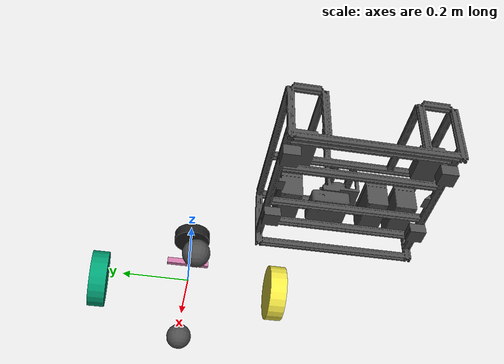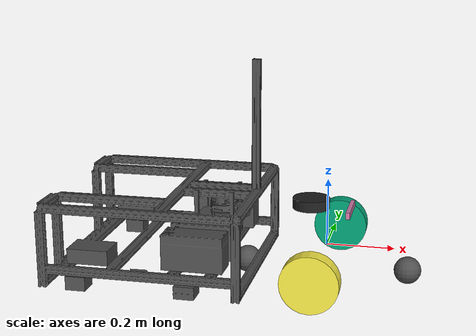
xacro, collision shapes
<?xml version="1.0" ?>
<robot name="warebot" xmlns:xacro="http://ros.org/wiki/xacro">
  <xacro:include filename="$(find warebot_2020_description)/urdf/material.xacro"/>
  <xacro:include filename="$(find warebot_2020_description)/urdf/warebot.gazebo.xacro"/>

  <xacro:property name="asus_cam_rgb_px" value="0.005"/>
  <xacro:property name="asus_cam_rgb_py" value="0.018"/>
  <xacro:property name="asus_cam_rgb_pz" value="0.013"/>
  <xacro:property name="asus_cam_depth_offset" value="0.01"/>

  <!--World link as base foot used for fixing robot to Gazebo-->
  <link name="base_footprint"/>

  <joint name="base_joint" type="fixed">
    <parent link="base_footprint"/>
    <child link="base_link" />
    <origin xyz="0 0 0.010" rpy="0 0 0"/>
  </joint>

  <!--4 wheel robot-->

  <!--2 wheel robot with castor wheels-->
  <link name="base_link">
    <inertial>
      <mass value="60"/>
        <origin rpy="0 0 0" xyz="0 0 0.1"/>
        <inertia ixx="1.215" ixy="0.0" ixz="0.0" iyy="1.215" iyz="0.0" izz="2.075"/>
    </inertial>

    <collision name="chassis_collision">
      <origin rpy="0 0 0" xyz="0 0 0"/>
      <geometry>
        <mesh filename="package://warebot_2020_description/meshes/Chassis.stl" scale="0.01 0.01 0.01"/>
      </geometry>
    </collision>

    <collision name="caster_collision_back">
      <origin rpy="0 0 0" xyz="-0.24 0 -0.074"/>
      <geometry>
        <sphere radius="0.04"/>
      </geometry>
      <surface>
        <friction>
          <ode>
            <mu>0</mu>
            <mu2>0</mu2>
            <slip1>1.0</slip1>
            <slip2>1.0</slip2>
          </ode>
        </friction>
      </surface>
    </collision>

    <collision name="caster_collision_front">
      <origin rpy="0 0 0" xyz="0.24 0 -0.074"/>
      <geometry>
        <sphere radius="0.04"/>
      </geometry>
      <surface>
        <friction>
          <ode>
            <mu>0</mu>
            <mu2>0</mu2>
            <slip1>1.0</slip1>
            <slip2>1.0</slip2>
          </ode>
        </friction>
      </surface>
    </collision>

    <visual name="chassis_visual">
      <origin rpy="0 0 0" xyz="0 0 0"/>
      <geometry>
        <mesh filename="package://warebot_2020_description/meshes/Chassis.stl" scale="0.01 0.01 0.01"/>
      </geometry>
    </visual>

    <visual name="caster_visual_back">
      <origin rpy="0 0 0" xyz="-0.24 0 -0.06"/>
      <geometry>
        <mesh filename="package://warebot_2020_description/meshes/WareBot_Caster.dae" scale="1.0 1.0 1.0"/>
      </geometry>
    </visual>

    <visual name="caster_visual_front">
      <origin rpy="0 0 -3.14158" xyz="0.24 0 -0.04"/>
      <geometry>
        <mesh filename="package://warebot_2020_description/meshes/WareBot_Caster.dae" scale="1.0 1.0 1.0"/>
      </geometry>
    </visual>
  </link>

  <joint name="wheel_left_joint" type="continuous">
    <parent link="base_link"/>
    <child link="wheel_left_link"/>
    <origin rpy="0 0 0" xyz="0.009 0.27 -0.0308"/>
    <axis xyz="0 1 0"/>
    <limit effort="90" velocity="20"/>
  </joint>

  <link name="wheel_left_link">
    <inertial>
      <mass value="5"/>
      <origin rpy="0 0 0" xyz="0 0 0"/>
      <inertia ixx="0.0123" ixy="0" ixz="0" iyy="0.0226" iyz="0" izz="0.0123"/>
    </inertial>

    <collision name="wheel_left_collision">
      <origin rpy="1.5707 0 0" xyz="0 0 0"/>
        <geometry>
          <cylinder length="0.05" radius="0.0835"/>
        </geometry>
    </collision>

    <visual name="wheel_left_visual">
      <origin rpy="0 0 0" xyz="0 0 0"/>
      <geometry>
          <mesh filename="package://warebot_2020_description/meshes/WareBot_Wheel.dae" scale="1.0 1.0 1.0"/>
      </geometry>
    </visual>
  </link>

  <joint name="wheel_right_joint" type="continuous">
    <parent link="base_link"/>
    <child link="wheel_right_link"/>
    <origin rpy="0 0 0" xyz="-0.009 -0.27 -0.0308"/>
    <axis xyz="0 1 0"/>
    <limit effort="90" velocity="20"/>
  </joint>

  <link name="wheel_right_link">
    <inertial>
      <mass value="5"/>
      <origin rpy="0 0 0" xyz="0 0 0"/>
      <inertia ixx="0.0123" ixy="0" ixz="0" iyy="0.0226" iyz="0" izz="0.0123"/>
    </inertial>

    <collision name="warebot_wheel_right_collision">
      <origin rpy="1.5707 0 0" xyz="0 0 0"/>
      <geometry>
        <cylinder length="0.05" radius="0.0835"/>
      </geometry>
    </collision>

    <visual name="warebot_wheel_right_visual">
      <origin rpy="0 0 3.14" xyz="0 0 0"/>
      <geometry>
        <mesh filename="package://warebot_2020_description/meshes/WareBot_Wheel.dae" scale="1.0 1.0 1.0"/>
      </geometry>
    </visual>
  </link>

  <joint name="imu_joint" type="fixed">
    <parent link="base_link"/>
    <child link="imu_link"/>
    <origin xyz="0.0 0 0.068" rpy="0 0 0"/>
  </joint>
  <link name="imu_link"/>

  <joint name="scan_joint" type="fixed">
    <parent link="base_link"/>
    <child link="base_scan"/>
    <origin xyz="-0.064 0 0.122" rpy="0 0 0"/>
  </joint>

  <link name="base_scan">
    <visual>
      <origin xyz="0 0 0" rpy="0 0 0"/>
      <geometry>
        <mesh filename="package://warebot_2020_description/meshes/lds.stl" scale="0.001 0.001 0.001"/>
      </geometry>
      <material name="dark"/>
    </visual>

    <collision>
      <origin xyz="0.015 0 -0.0065" rpy="0 0 0"/>
      <geometry>
        <cylinder length="0.0315" radius="0.055"/>
      </geometry>
    </collision>

    <inertial>
      <mass value="0.114" />
      <origin xyz="0 0 0" />
      <inertia ixx="0.001" ixy="0.0" ixz="0.0"
               iyy="0.001" iyz="0.0"
               izz="0.001" />
    </inertial>
  </link>

  <joint name="camera_joint" type="fixed">
    <origin xyz="0.064 -0.065 0.094" rpy="0 0 0"/>
    <parent link="base_link"/>
    <child link="camera_link"/>
  </joint>

  <link name="camera_link">
    <visual>
     <origin xyz="0 0 0" rpy="1.57 0 1.57"/>
      <geometry>
       <mesh filename="package://turtlebot3_description/meshes/sensors/r200.dae" />
      </geometry>
    </visual>
    <collision>
      <origin xyz="0.003 0.065 0.007" rpy="0 0 0"/>
      <geometry>
        <box size="0.012 0.132 0.020"/>
      </geometry>
    </collision>
  </link>

  <joint name="camera_rgb_joint" type="fixed">
    <origin xyz="${asus_cam_rgb_px} ${asus_cam_rgb_py} ${asus_cam_rgb_pz}" rpy="0 0 0"/>
    <parent link="camera_link"/>
    <child link="camera_rgb_frame"/>
  </joint>
  <link name="camera_rgb_frame"/>

  <joint name="camera_rgb_optical_joint" type="fixed">
    <origin xyz="0 0 0" rpy="-1.57 0 -1.57"/>
    <parent link="camera_rgb_frame"/>
    <child link="camera_rgb_optical_frame"/>
  </joint>
  <link name="camera_rgb_optical_frame"/>

  <joint name="camera_depth_joint" type="fixed">
    <origin xyz="${asus_cam_rgb_px} ${asus_cam_rgb_py + asus_cam_depth_offset} ${asus_cam_rgb_pz}" rpy="0 0 0"/>
    <parent link="camera_link"/>
    <child link="camera_depth_frame"/>
  </joint>
  <link name="camera_depth_frame"/>

  <joint name="camera_depth_optical_joint" type="fixed">
    <origin xyz="0 0 0" rpy="-1.57 0 -1.57"/>
    <parent link="camera_depth_frame"/>
    <child link="camera_depth_optical_frame"/>
  </joint>
  <link name="camera_depth_optical_frame"/>

</robot>
